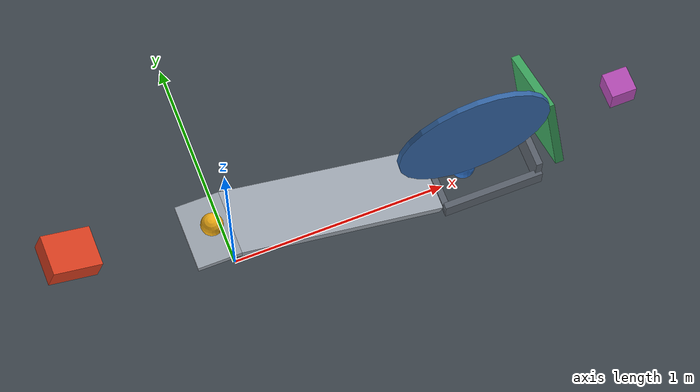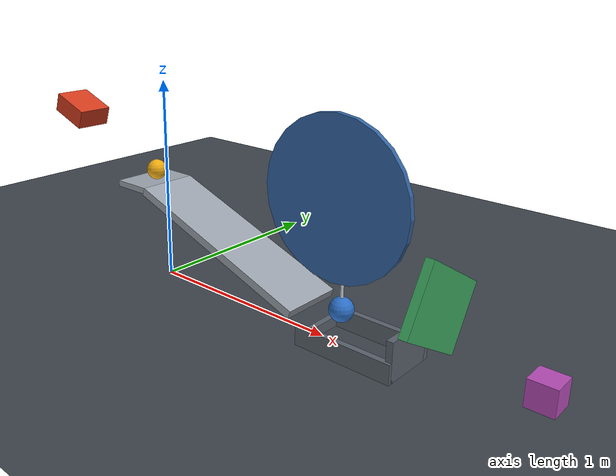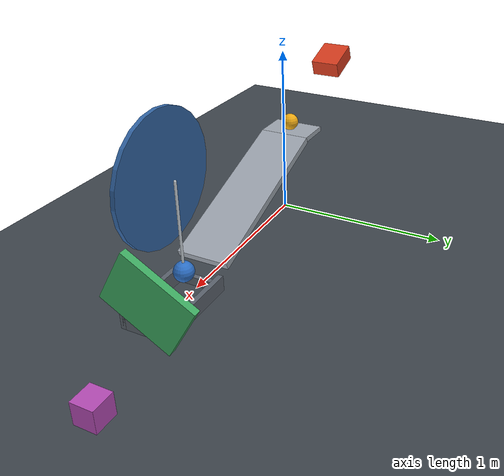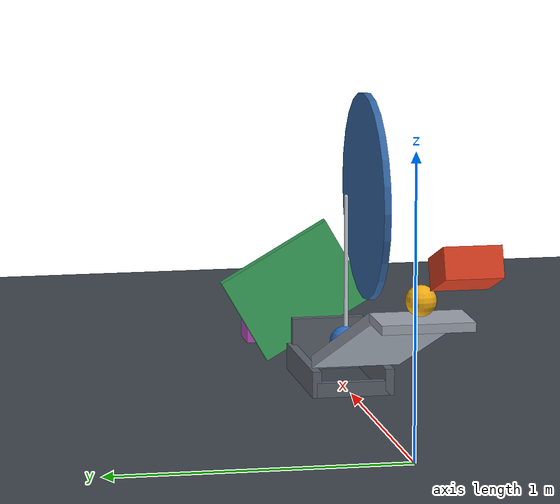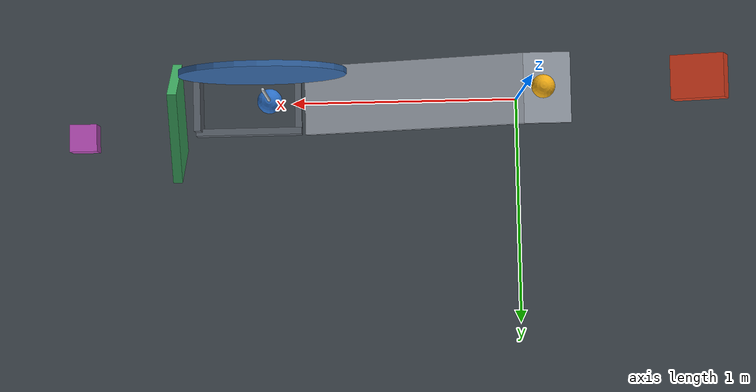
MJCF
<mujoco model="spring_cart_ramp_pendulum_door">
  <compiler angle="degree" autolimits="true"/>
  <option timestep="0.002" gravity="0 0 -9.81" integrator="implicitfast" solver="Newton" iterations="100" tolerance="1e-10"/>
  <size njmax="2000" nconmax="300"/>
  <visual>
    <global azimuth="125" elevation="-18"/>
    <headlight ambient="0.35 0.35 0.35" diffuse="0.75 0.75 0.75" specular="0.15 0.15 0.15"/>
  </visual>

  <!-- MuJoCo has no direct restitution attribute. This contact damping ratio targets e approximately 0.05. -->
  <!-- The additional friction components provide torsional and rolling dissipation. -->

  <worldbody>
    <light name="scene_light" pos="0 -3 4" dir="0 0.5 -1"/>
    <camera name="overview" pos="3.1 -4.2 2.4" xyaxes="0.84 0.54 0 -0.20 0.31 0.93"/>

    <geom name="floor" type="plane" size="5 5 0.1" friction="0.68 0.005 0.001" condim="6" solref="0.006 0.690107" solimp="0.99 0.99 0.001" rgba="0.24 0.27 0.30 1"/>

    <!-- The inclined slide lets gravity assist the spring after it passes its neutral position. -->
    <!-- At q=0 the spring is compressed 0.20 m; first cart/ball contact is at q=0.50 m. -->
    <body name="cart1" pos="-0.700197130 0 0.767753438" quat="0.984807753 0 0.173648178 0">
      <joint name="cart1_slide" type="slide" axis="1 0 0" damping="0.20" stiffness="18" springref="0.20" limited="true" range="0 0.54" solreflimit="0.004 1" solimplimit="0.99 0.99 0.001"/>
      <geom name="cart1_chassis" type="box" size="0.11 0.09 0.05" mass="0.50" friction="0.68 0.005 0.001" condim="6" solref="0.006 0.690107" solimp="0.99 0.99 0.001" rgba="0.85 0.24 0.12 1"/>
    </body>

    <!-- Main ramp surface: length 1.00 m, width 0.30 m, slope 20 degrees. -->
    <!-- Its downhill surface endpoint is (0.939692621, 0, 0.15). -->
    <!-- A level starting shelf prevents the resting ball from departing before the cart arrives. -->
    <body name="ramp1" pos="0.463005908 0 0.302216219" quat="0.984807753 0 0.173648178 0">
      <geom name="ramp1_surface" type="box" size="0.50 0.15 0.02" friction="0.68 0.005 0.001" condim="6" solref="0.006 0.690107" solimp="0.99 0.99 0.001" rgba="0.62 0.65 0.69 1"/>
      <geom name="ramp1_start_shelf" type="box" pos="-0.588838960 0 -0.028297404" quat="0.984807753 0 -0.173648178 0" size="0.10 0.15 0.015" friction="0.68 0.005 0.001" condim="6" solref="0.006 0.690107" solimp="0.99 0.99 0.001" rgba="0.62 0.65 0.69 1"/>
    </body>

    <body name="ball1" pos="-0.08 0 0.542020143">
      <freejoint name="ball1_free"/>
      <geom name="ball1_sphere" type="sphere" size="0.05" mass="0.20" friction="0.68 0.005 0.001" condim="6" solref="0.006 0.690107" solimp="0.99 0.99 0.001" rgba="0.95 0.68 0.08 1"/>
    </body>

    <!-- Rigid 0.50 m pivot-to-bob pendulum, total mass 0.35 kg. -->
    <!-- A concentric flywheel supplies inertia without adding gravitational lifting work. -->
    <!-- The bob's near surface is 0.10 m beyond the ramp's downhill endpoint. -->
    <body name="pendulum1" pos="1.094692621 0 0.66">
      <joint name="pendulum1_hinge" type="hinge" axis="0 1 0" damping="0.04" limited="true" range="-60 0" solreflimit="0.004 1" solimplimit="0.99 0.99 0.001"/>
      <geom name="pendulum1_flywheel" type="cylinder" pos="0 -0.07 0" quat="0.707106781 0.707106781 0 0" size="0.35 0.012" mass="0.315" friction="0.68 0.005 0.001" condim="6" solref="0.006 0.690107" solimp="0.99 0.99 0.001" rgba="0.20 0.40 0.65 1"/>
      <geom name="pendulum1_rod" type="capsule" fromto="0 0 0 0 0 -0.50" size="0.007" mass="0.005" friction="0.68 0.005 0.001" condim="6" solref="0.006 0.690107" solimp="0.99 0.99 0.001" rgba="0.80 0.83 0.86 1"/>
      <geom name="pendulum1_bob" type="sphere" pos="0 0 -0.50" size="0.055" mass="0.030" friction="0.68 0.005 0.001" condim="6" solref="0.006 0.690107" solimp="0.99 0.99 0.001" rgba="0.18 0.45 0.80 1"/>
    </body>

    <!-- Passive catch enclosure arrests the ball after it strikes the pendulum. -->
    <!-- Its downstream wall remains below the pendulum bob's swept envelope. -->
    <body name="ball1_catcher" pos="0 0 0">
      <geom name="ball1_catcher_upstream" type="box" pos="0.975 0 0.025" size="0.015 0.125 0.025" friction="0.68 0.005 0.001" condim="6" solref="0.006 0.690107" solimp="0.99 0.99 0.001" rgba="0.36 0.39 0.43 1"/>
      <geom name="ball1_catcher_downstream" type="box" pos="1.415 0 0.09" size="0.015 0.125 0.09" friction="0.68 0.005 0.001" condim="6" solref="0.006 0.690107" solimp="0.99 0.99 0.001" rgba="0.36 0.39 0.43 1"/>
      <geom name="ball1_catcher_left" type="box" pos="1.195 -0.125 0.045" size="0.235 0.015 0.045" friction="0.68 0.005 0.001" condim="6" solref="0.006 0.690107" solimp="0.99 0.99 0.001" rgba="0.36 0.39 0.43 1"/>
      <geom name="ball1_catcher_right" type="box" pos="1.195 0.125 0.045" size="0.235 0.015 0.045" friction="0.68 0.005 0.001" condim="6" solref="0.006 0.690107" solimp="0.99 0.99 0.001" rgba="0.36 0.39 0.43 1"/>
    </body>

    <!-- At a pendulum angle of -40 degrees, the bob first meets the door's near face. -->
    <!-- The inclined door hinge gives an initially balanced, unstable equilibrium. -->
    <!-- After impact, gravity assists its clockwise sweep to the -70 degree stop. -->
    <body name="door1" pos="1.491086426 0.20 0.02" quat="0.965925826 -0.258819045 0 0">
      <joint name="door1_hinge" type="hinge" axis="0 0 -1" damping="0.04" limited="true" range="-70 0" solreflimit="0.004 1" solimplimit="0.99 0.99 0.001"/>
      <geom name="door1_panel" type="box" pos="0 -0.21 0.16" size="0.02 0.21 0.16" mass="0.45" friction="0.68 0.005 0.001" condim="6" solref="0.006 0.690107" solimp="0.99 0.99 0.001" rgba="0.24 0.67 0.38 1"/>
    </body>

    <body name="block1" pos="1.926 0.14 0.06">
      <freejoint name="block1_free"/>
      <geom name="block1_cube" type="box" size="0.06 0.06 0.06" mass="0.35" friction="0.68 0.005 0.001" condim="6" solref="0.006 0.690107" solimp="0.99 0.99 0.001" rgba="0.72 0.30 0.72 1"/>
    </body>
  </worldbody>

  <keyframe>
    <key name="start" time="0"/>
  </keyframe>
</mujoco>
